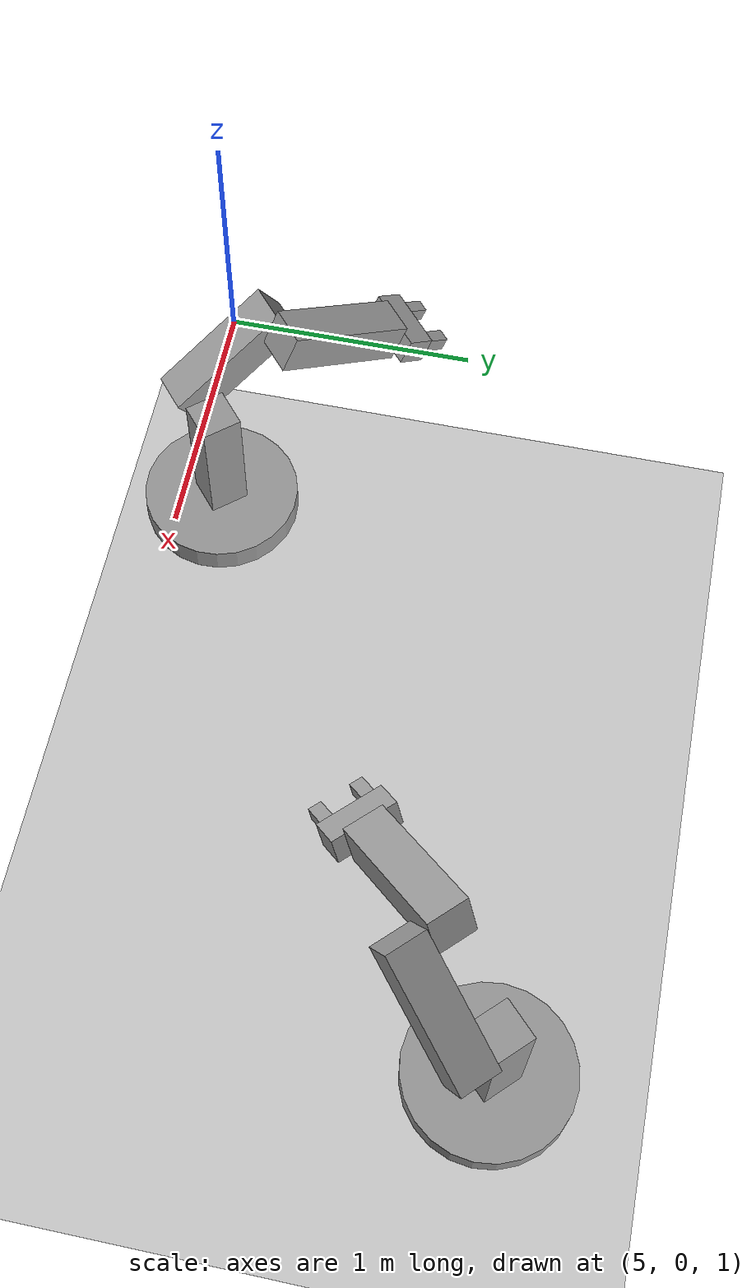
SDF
<sdf version="1.7">
 <world name="default">
  <model name="ground_plane">
   <static>1</static>
   <link name="link">
    <collision name="collision">
     <geometry><plane><normal>0 0 1</normal><size>100 100</size></plane></geometry>
     <surface>
      <contact><collide_bitmask>65535</collide_bitmask></contact>
      <friction><ode><mu>100</mu><mu2>50</mu2></ode></friction>
     </surface>
    </collision>
    <visual name="visual">
     <cast_shadows>0</cast_shadows>
     <geometry><plane><normal>0 0 1</normal><size>100 100</size></plane></geometry>
     <material>
      <script><uri>file://media/materials/scripts/gazebo.material</uri><name>Gazebo/Grey</name></script>
     </material>
    </visual>
   </link>
  </model>
  <model name="fixed_arm_robot_clone_0">
   <link name="link_0">
    <inertial>
     <mass>1</mass>
     <inertia><ixx>0.145833</ixx><ixy>0</ixy><ixz>0</ixz><iyy>0.145833</iyy><iyz>0</iyz><izz>0.125</izz></inertia>
    </inertial>
    <pose>-0.37347 -0.501985 -0.410714 0 -0 0</pose>
    <visual name="visual">
     <geometry><cylinder><radius>0.3</radius><length>0.1</length></cylinder></geometry>
     <material>
      <lighting>1</lighting>
      <script><uri>file://media/materials/scripts/gazebo.material</uri><name>Gazebo/Grey</name></script>
      <shader type="pixel"><normal_map>__default__</normal_map></shader>
      <ambient>0.3 0.3 0.3 1</ambient>
      <diffuse>0.7 0.7 0.7 1</diffuse>
      <specular>0.01 0.01 0.01 1</specular>
      <emissive>0 0 0 1</emissive>
     </material>
    </visual>
    <collision name="collision">
     <geometry><cylinder><radius>0.3</radius><length>0.1</length></cylinder></geometry>
     <surface>
      <friction>
       <ode><mu>1</mu><mu2>1</mu2><fdir1>0 0 0</fdir1><slip1>0</slip1><slip2>0</slip2></ode>
       <torsional>
        <coefficient>1</coefficient>
        <patch_radius>0</patch_radius>
        <surface_radius>0</surface_radius>
        <use_patch_radius>1</use_patch_radius>
        <ode><slip>0</slip></ode>
       </torsional>
      </friction>
      <bounce><restitution_coefficient>0</restitution_coefficient><threshold>1e+06</threshold></bounce>
      <contact>
       <collide_without_contact>0</collide_without_contact>
       <collide_without_contact_bitmask>1</collide_without_contact_bitmask>
       <collide_bitmask>1</collide_bitmask>
       <ode>
        <soft_cfm>0</soft_cfm>
        <soft_erp>0.2</soft_erp>
        <kp>1e+13</kp>
        <kd>1</kd>
        <max_vel>0.01</max_vel>
        <min_depth>0</min_depth>
       </ode>
       <bullet>
        <split_impulse>1</split_impulse>
        <split_impulse_penetration_threshold>-0.01</split_impulse_penetration_threshold>
        <soft_cfm>0</soft_cfm>
        <soft_erp>0.2</soft_erp>
        <kp>1e+13</kp>
        <kd>1</kd>
       </bullet>
      </contact>
     </surface>
    </collision>
   </link>
   <link name="link_1">
    <inertial>
     <mass>1</mass>
     <inertia>
      <ixx>0.166667</ixx>
      <ixy>0</ixy>
      <ixz>0</ixz>
      <iyy>0.166667</iyy>
      <iyz>0</iyz>
      <izz>0.166667</izz>
     </inertia>
    </inertial>
    <pose>-0.37347 -0.501985 -0.110714 0 -0 0</pose>
    <visual name="visual">
     <geometry><box><size>0.15 0.15 0.5</size></box></geometry>
     <material>
      <lighting>1</lighting>
      <script><uri>file://media/materials/scripts/gazebo.material</uri><name>Gazebo/Grey</name></script>
      <shader type="pixel"><normal_map>__default__</normal_map></shader>
      <ambient>0.3 0.3 0.3 1</ambient>
      <diffuse>0.7 0.7 0.7 1</diffuse>
      <specular>0.01 0.01 0.01 1</specular>
      <emissive>0 0 0 1</emissive>
     </material>
    </visual>
    <collision name="collision">
     <geometry><box><size>0.15 0.15 0.5</size></box></geometry>
     <surface>
      <friction>
       <ode><mu>1</mu><mu2>1</mu2><fdir1>0 0 0</fdir1><slip1>0</slip1><slip2>0</slip2></ode>
       <torsional>
        <coefficient>1</coefficient>
        <patch_radius>0</patch_radius>
        <surface_radius>0</surface_radius>
        <use_patch_radius>1</use_patch_radius>
        <ode><slip>0</slip></ode>
       </torsional>
      </friction>
      <bounce><restitution_coefficient>0</restitution_coefficient><threshold>1e+06</threshold></bounce>
      <contact>
       <collide_without_contact>0</collide_without_contact>
       <collide_without_contact_bitmask>1</collide_without_contact_bitmask>
       <collide_bitmask>1</collide_bitmask>
       <ode>
        <soft_cfm>0</soft_cfm>
        <soft_erp>0.2</soft_erp>
        <kp>1e+13</kp>
        <kd>1</kd>
        <max_vel>0.01</max_vel>
        <min_depth>0</min_depth>
       </ode>
       <bullet>
        <split_impulse>1</split_impulse>
        <split_impulse_penetration_threshold>-0.01</split_impulse_penetration_threshold>
        <soft_cfm>0</soft_cfm>
        <soft_erp>0.2</soft_erp>
        <kp>1e+13</kp>
        <kd>1</kd>
       </bullet>
      </contact>
     </surface>
    </collision>
   </link>
   <link name="link_1_clone">
    <inertial>
     <mass>1</mass>
     <inertia>
      <ixx>0.166667</ixx>
      <ixy>0</ixy>
      <ixz>0</ixz>
      <iyy>0.166667</iyy>
      <iyz>0</iyz>
      <izz>0.166667</izz>
     </inertia>
    </inertial>
    <pose>-0.37347 -0.351985 0.139286 0 1 0</pose>
    <visual name="visual">
     <pose>0 0 0.175 0 -0 0</pose>
     <geometry><box><size>0.15 0.15 0.5</size></box></geometry>
     <material>
      <lighting>1</lighting>
      <script><uri>file://media/materials/scripts/gazebo.material</uri><name>Gazebo/Grey</name></script>
      <shader type="pixel"><normal_map>__default__</normal_map></shader>
      <ambient>0.3 0.3 0.3 1</ambient>
      <diffuse>0.7 0.7 0.7 1</diffuse>
      <specular>0.01 0.01 0.01 1</specular>
      <emissive>0 0 0 1</emissive>
     </material>
    </visual>
    <collision name="collision">
     <pose>0 0 0.175 0 -0 0</pose>
     <geometry><box><size>0.15 0.15 0.5</size></box></geometry>
     <surface>
      <friction>
       <ode><mu>1</mu><mu2>1</mu2><fdir1>0 0 0</fdir1><slip1>0</slip1><slip2>0</slip2></ode>
       <torsional>
        <coefficient>1</coefficient>
        <patch_radius>0</patch_radius>
        <surface_radius>0</surface_radius>
        <use_patch_radius>1</use_patch_radius>
        <ode><slip>0</slip></ode>
       </torsional>
      </friction>
      <bounce><restitution_coefficient>0</restitution_coefficient><threshold>1e+06</threshold></bounce>
      <contact>
       <collide_without_contact>0</collide_without_contact>
       <collide_without_contact_bitmask>1</collide_without_contact_bitmask>
       <collide_bitmask>1</collide_bitmask>
       <ode>
        <soft_cfm>0</soft_cfm>
        <soft_erp>0.2</soft_erp>
        <kp>1e+13</kp>
        <kd>1</kd>
        <max_vel>0.01</max_vel>
        <min_depth>0</min_depth>
       </ode>
       <bullet>
        <split_impulse>1</split_impulse>
        <split_impulse_penetration_threshold>-0.01</split_impulse_penetration_threshold>
        <soft_cfm>0</soft_cfm>
        <soft_erp>0.2</soft_erp>
        <kp>1e+13</kp>
        <kd>1</kd>
       </bullet>
      </contact>
     </surface>
    </collision>
   </link>
   <link name="link_1_clone_clone">
    <inertial>
     <mass>1</mass>
     <inertia>
      <ixx>0.166667</ixx>
      <ixy>0</ixy>
      <ixz>0</ixz>
      <iyy>0.166667</iyy>
      <iyz>0</iyz>
      <izz>0.166667</izz>
     </inertia>
    </inertial>
    <pose>-0.015845 -0.501985 0.368914 3.14159 1.14159 3.14159</pose>
    <visual name="visual">
     <pose>0 0 0.175 0 -0 0</pose>
     <geometry><box><size>0.15 0.15 0.5</size></box></geometry>
     <material>
      <lighting>1</lighting>
      <script><uri>file://media/materials/scripts/gazebo.material</uri><name>Gazebo/Grey</name></script>
      <shader type="pixel"><normal_map>__default__</normal_map></shader>
      <ambient>0.3 0.3 0.3 1</ambient>
      <diffuse>0.7 0.7 0.7 1</diffuse>
      <specular>0.01 0.01 0.01 1</specular>
      <emissive>0 0 0 1</emissive>
     </material>
    </visual>
    <collision name="collision">
     <pose>0 0 0.175 0 -0 0</pose>
     <geometry><box><size>0.15 0.15 0.5</size></box></geometry>
     <surface>
      <friction>
       <ode><mu>1</mu><mu2>1</mu2><fdir1>0 0 0</fdir1><slip1>0</slip1><slip2>0</slip2></ode>
       <torsional>
        <coefficient>1</coefficient>
        <patch_radius>0</patch_radius>
        <surface_radius>0</surface_radius>
        <use_patch_radius>1</use_patch_radius>
        <ode><slip>0</slip></ode>
       </torsional>
      </friction>
      <bounce><restitution_coefficient>0</restitution_coefficient><threshold>1e+06</threshold></bounce>
      <contact>
       <collide_without_contact>0</collide_without_contact>
       <collide_without_contact_bitmask>1</collide_without_contact_bitmask>
       <collide_bitmask>1</collide_bitmask>
       <ode>
        <soft_cfm>0</soft_cfm>
        <soft_erp>0.2</soft_erp>
        <kp>1e+13</kp>
        <kd>1</kd>
        <max_vel>0.01</max_vel>
        <min_depth>0</min_depth>
       </ode>
       <bullet>
        <split_impulse>1</split_impulse>
        <split_impulse_penetration_threshold>-0.01</split_impulse_penetration_threshold>
        <soft_cfm>0</soft_cfm>
        <soft_erp>0.2</soft_erp>
        <kp>1e+13</kp>
        <kd>1</kd>
       </bullet>
      </contact>
     </surface>
    </collision>
   </link>
   <link name="link_2">
    <inertial>
     <mass>1</mass>
     <inertia>
      <ixx>0.166667</ixx>
      <ixy>0</ixy>
      <ixz>0</ixz>
      <iyy>0.166667</iyy>
      <iyz>0</iyz>
      <izz>0.166667</izz>
     </inertia>
    </inertial>
    <pose>0.416072 -0.501985 0.171244 -1.5708 1.14159 -3.14159</pose>
    <visual name="visual">
     <geometry><box><size>0.1 0.1 0.25</size></box></geometry>
     <material>
      <lighting>1</lighting>
      <script><uri>file://media/materials/scripts/gazebo.material</uri><name>Gazebo/Grey</name></script>
      <shader type="pixel"><normal_map>__default__</normal_map></shader>
      <ambient>0.3 0.3 0.3 1</ambient>
      <diffuse>0.7 0.7 0.7 1</diffuse>
      <specular>0.01 0.01 0.01 1</specular>
      <emissive>0 0 0 1</emissive>
     </material>
    </visual>
    <collision name="collision">
     <geometry><box><size>0.1 0.1 0.25</size></box></geometry>
     <surface>
      <friction>
       <ode><mu>1</mu><mu2>1</mu2><fdir1>0 0 0</fdir1><slip1>0</slip1><slip2>0</slip2></ode>
       <torsional>
        <coefficient>1</coefficient>
        <patch_radius>0</patch_radius>
        <surface_radius>0</surface_radius>
        <use_patch_radius>1</use_patch_radius>
        <ode><slip>0</slip></ode>
       </torsional>
      </friction>
      <bounce><restitution_coefficient>0</restitution_coefficient><threshold>1e+06</threshold></bounce>
      <contact>
       <collide_without_contact>0</collide_without_contact>
       <collide_without_contact_bitmask>1</collide_without_contact_bitmask>
       <collide_bitmask>1</collide_bitmask>
       <ode>
        <soft_cfm>0</soft_cfm>
        <soft_erp>0.2</soft_erp>
        <kp>1e+13</kp>
        <kd>1</kd>
        <max_vel>0.01</max_vel>
        <min_depth>0</min_depth>
       </ode>
       <bullet>
        <split_impulse>1</split_impulse>
        <split_impulse_penetration_threshold>-0.01</split_impulse_penetration_threshold>
        <soft_cfm>0</soft_cfm>
        <soft_erp>0.2</soft_erp>
        <kp>1e+13</kp>
        <kd>1</kd>
       </bullet>
      </contact>
     </surface>
    </collision>
   </link>
   <link name="link_3">
    <inertial>
     <mass>1</mass>
     <inertia>
      <ixx>0.166667</ixx>
      <ixy>0</ixy>
      <ixz>0</ixz>
      <iyy>0.166667</iyy>
      <iyz>0</iyz>
      <izz>0.166667</izz>
     </inertia>
    </inertial>
    <pose>0.507001 -0.421985 0.12963 -1e-06 1.14159 -3.14159</pose>
    <visual name="visual">
     <geometry><box><size>0.05 0.05 0.1</size></box></geometry>
     <material>
      <lighting>1</lighting>
      <script><uri>file://media/materials/scripts/gazebo.material</uri><name>Gazebo/Grey</name></script>
      <shader type="pixel"><normal_map>__default__</normal_map></shader>
      <ambient>0.3 0.3 0.3 1</ambient>
      <diffuse>0.7 0.7 0.7 1</diffuse>
      <specular>0.01 0.01 0.01 1</specular>
      <emissive>0 0 0 1</emissive>
     </material>
    </visual>
    <collision name="collision">
     <geometry><box><size>0.05 0.05 0.1</size></box></geometry>
     <surface>
      <friction>
       <ode><mu>1</mu><mu2>1</mu2><fdir1>0 0 0</fdir1><slip1>0</slip1><slip2>0</slip2></ode>
       <torsional>
        <coefficient>1</coefficient>
        <patch_radius>0</patch_radius>
        <surface_radius>0</surface_radius>
        <use_patch_radius>1</use_patch_radius>
        <ode><slip>0</slip></ode>
       </torsional>
      </friction>
      <bounce><restitution_coefficient>0</restitution_coefficient><threshold>1e+06</threshold></bounce>
      <contact>
       <collide_without_contact>0</collide_without_contact>
       <collide_without_contact_bitmask>1</collide_without_contact_bitmask>
       <collide_bitmask>1</collide_bitmask>
       <ode>
        <soft_cfm>0</soft_cfm>
        <soft_erp>0.2</soft_erp>
        <kp>1e+13</kp>
        <kd>1</kd>
        <max_vel>0.01</max_vel>
        <min_depth>0</min_depth>
       </ode>
       <bullet>
        <split_impulse>1</split_impulse>
        <split_impulse_penetration_threshold>-0.01</split_impulse_penetration_threshold>
        <soft_cfm>0</soft_cfm>
        <soft_erp>0.2</soft_erp>
        <kp>1e+13</kp>
        <kd>1</kd>
       </bullet>
      </contact>
     </surface>
    </collision>
   </link>
   <link name="link_3_clone">
    <inertial>
     <mass>1</mass>
     <inertia>
      <ixx>0.166667</ixx>
      <ixy>0</ixy>
      <ixz>0</ixz>
      <iyy>0.166667</iyy>
      <iyz>0</iyz>
      <izz>0.166667</izz>
     </inertia>
    </inertial>
    <pose>0.507002 -0.581985 0.12963 -1e-06 1.14159 -3.14159</pose>
    <visual name="visual">
     <geometry><box><size>0.05 0.05 0.1</size></box></geometry>
     <material>
      <lighting>1</lighting>
      <script><uri>file://media/materials/scripts/gazebo.material</uri><name>Gazebo/Grey</name></script>
      <shader type="pixel"><normal_map>__default__</normal_map></shader>
      <ambient>0.3 0.3 0.3 1</ambient>
      <diffuse>0.7 0.7 0.7 1</diffuse>
      <specular>0.01 0.01 0.01 1</specular>
      <emissive>0 0 0 1</emissive>
     </material>
    </visual>
    <collision name="collision">
     <geometry><box><size>0.05 0.05 0.1</size></box></geometry>
     <surface>
      <friction>
       <ode><mu>1</mu><mu2>1</mu2><fdir1>0 0 0</fdir1><slip1>0</slip1><slip2>0</slip2></ode>
       <torsional>
        <coefficient>1</coefficient>
        <patch_radius>0</patch_radius>
        <surface_radius>0</surface_radius>
        <use_patch_radius>1</use_patch_radius>
        <ode><slip>0</slip></ode>
       </torsional>
      </friction>
      <bounce><restitution_coefficient>0</restitution_coefficient><threshold>1e+06</threshold></bounce>
      <contact>
       <collide_without_contact>0</collide_without_contact>
       <collide_without_contact_bitmask>1</collide_without_contact_bitmask>
       <collide_bitmask>1</collide_bitmask>
       <ode>
        <soft_cfm>0</soft_cfm>
        <soft_erp>0.2</soft_erp>
        <kp>1e+13</kp>
        <kd>1</kd>
        <max_vel>0.01</max_vel>
        <min_depth>0</min_depth>
       </ode>
       <bullet>
        <split_impulse>1</split_impulse>
        <split_impulse_penetration_threshold>-0.01</split_impulse_penetration_threshold>
        <soft_cfm>0</soft_cfm>
        <soft_erp>0.2</soft_erp>
        <kp>1e+13</kp>
        <kd>1</kd>
       </bullet>
      </contact>
     </surface>
    </collision>
   </link>
   <joint name="link_0_JOINT_0" type="fixed">
    <parent>link_0</parent>
    <child>link_1</child>
    <physics>
     <ode><limit><cfm>0</cfm><erp>0.2</erp></limit><suspension><cfm>0</cfm><erp>0.2</erp></suspension></ode>
    </physics>
   </joint>
   <joint name="link_1_JOINT_5" type="fixed">
    <parent>link_1</parent>
    <child>link_1_clone</child>
    <physics>
     <ode><limit><cfm>0</cfm><erp>0.2</erp></limit><suspension><cfm>0</cfm><erp>0.2</erp></suspension></ode>
    </physics>
   </joint>
   <joint name="link_1_clone_JOINT_6" type="fixed">
    <parent>link_1_clone</parent>
    <child>link_1_clone_clone</child>
    <physics>
     <ode><limit><cfm>0</cfm><erp>0.2</erp></limit><suspension><cfm>0</cfm><erp>0.2</erp></suspension></ode>
    </physics>
   </joint>
   <joint name="link_1_clone_clone_JOINT_8" type="fixed">
    <parent>link_1_clone_clone</parent>
    <child>link_2</child>
    <physics>
     <ode><limit><cfm>0</cfm><erp>0.2</erp></limit><suspension><cfm>0</cfm><erp>0.2</erp></suspension></ode>
    </physics>
   </joint>
   <joint name="link_2_JOINT_9" type="fixed">
    <parent>link_2</parent>
    <child>link_3</child>
    <physics>
     <ode><limit><cfm>0</cfm><erp>0.2</erp></limit><suspension><cfm>0</cfm><erp>0.2</erp></suspension></ode>
    </physics>
   </joint>
   <joint name="link_3_JOINT_10" type="fixed">
    <parent>link_3</parent>
    <child>link_3_clone</child>
    <physics>
     <ode><limit><cfm>0</cfm><erp>0.2</erp></limit><suspension><cfm>0</cfm><erp>0.2</erp></suspension></ode>
    </physics>
   </joint>
   <static>1</static>
   <pose>7.99286 0.949654 1.42548 -1e-06 1e-06 -2.36039</pose>
  </model>
  <model name="fixed_arm_robot_clone_1_clone_clone_1">
   <link name="link_0">
    <inertial>
     <mass>1</mass>
     <inertia><ixx>0.145833</ixx><ixy>0</ixy><ixz>0</ixz><iyy>0.145833</iyy><iyz>0</iyz><izz>0.125</izz></inertia>
    </inertial>
    <pose>-0.37347 -0.501985 -0.410714 0 -0 0</pose>
    <visual name="visual">
     <geometry><cylinder><radius>0.3</radius><length>0.1</length></cylinder></geometry>
     <material>
      <lighting>1</lighting>
      <script><uri>file://media/materials/scripts/gazebo.material</uri><name>Gazebo/Grey</name></script>
      <shader type="pixel"><normal_map>__default__</normal_map></shader>
      <ambient>0.3 0.3 0.3 1</ambient>
      <diffuse>0.7 0.7 0.7 1</diffuse>
      <specular>0.01 0.01 0.01 1</specular>
      <emissive>0 0 0 1</emissive>
     </material>
    </visual>
    <collision name="collision">
     <geometry><cylinder><radius>0.3</radius><length>0.1</length></cylinder></geometry>
     <surface>
      <friction>
       <ode><mu>1</mu><mu2>1</mu2><fdir1>0 0 0</fdir1><slip1>0</slip1><slip2>0</slip2></ode>
       <torsional>
        <coefficient>1</coefficient>
        <patch_radius>0</patch_radius>
        <surface_radius>0</surface_radius>
        <use_patch_radius>1</use_patch_radius>
        <ode><slip>0</slip></ode>
       </torsional>
      </friction>
      <bounce><restitution_coefficient>0</restitution_coefficient><threshold>1e+06</threshold></bounce>
      <contact>
       <collide_without_contact>0</collide_without_contact>
       <collide_without_contact_bitmask>1</collide_without_contact_bitmask>
       <collide_bitmask>1</collide_bitmask>
       <ode>
        <soft_cfm>0</soft_cfm>
        <soft_erp>0.2</soft_erp>
        <kp>1e+13</kp>
        <kd>1</kd>
        <max_vel>0.01</max_vel>
        <min_depth>0</min_depth>
       </ode>
       <bullet>
        <split_impulse>1</split_impulse>
        <split_impulse_penetration_threshold>-0.01</split_impulse_penetration_threshold>
        <soft_cfm>0</soft_cfm>
        <soft_erp>0.2</soft_erp>
        <kp>1e+13</kp>
        <kd>1</kd>
       </bullet>
      </contact>
     </surface>
    </collision>
   </link>
   <link name="link_1">
    <inertial>
     <mass>1</mass>
     <inertia>
      <ixx>0.166667</ixx>
      <ixy>0</ixy>
      <ixz>0</ixz>
      <iyy>0.166667</iyy>
      <iyz>0</iyz>
      <izz>0.166667</izz>
     </inertia>
    </inertial>
    <pose>-0.37347 -0.501985 -0.110714 0 -0 0</pose>
    <visual name="visual">
     <geometry><box><size>0.15 0.15 0.5</size></box></geometry>
     <material>
      <lighting>1</lighting>
      <script><uri>file://media/materials/scripts/gazebo.material</uri><name>Gazebo/Grey</name></script>
      <shader type="pixel"><normal_map>__default__</normal_map></shader>
      <ambient>0.3 0.3 0.3 1</ambient>
      <diffuse>0.7 0.7 0.7 1</diffuse>
      <specular>0.01 0.01 0.01 1</specular>
      <emissive>0 0 0 1</emissive>
     </material>
    </visual>
    <collision name="collision">
     <geometry><box><size>0.15 0.15 0.5</size></box></geometry>
     <surface>
      <friction>
       <ode><mu>1</mu><mu2>1</mu2><fdir1>0 0 0</fdir1><slip1>0</slip1><slip2>0</slip2></ode>
       <torsional>
        <coefficient>1</coefficient>
        <patch_radius>0</patch_radius>
        <surface_radius>0</surface_radius>
        <use_patch_radius>1</use_patch_radius>
        <ode><slip>0</slip></ode>
       </torsional>
      </friction>
      <bounce><restitution_coefficient>0</restitution_coefficient><threshold>1e+06</threshold></bounce>
      <contact>
       <collide_without_contact>0</collide_without_contact>
       <collide_without_contact_bitmask>1</collide_without_contact_bitmask>
       <collide_bitmask>1</collide_bitmask>
       <ode>
        <soft_cfm>0</soft_cfm>
        <soft_erp>0.2</soft_erp>
        <kp>1e+13</kp>
        <kd>1</kd>
        <max_vel>0.01</max_vel>
        <min_depth>0</min_depth>
       </ode>
       <bullet>
        <split_impulse>1</split_impulse>
        <split_impulse_penetration_threshold>-0.01</split_impulse_penetration_threshold>
        <soft_cfm>0</soft_cfm>
        <soft_erp>0.2</soft_erp>
        <kp>1e+13</kp>
        <kd>1</kd>
       </bullet>
      </contact>
     </surface>
    </collision>
   </link>
   <link name="link_1_clone">
    <inertial>
     <mass>1</mass>
     <inertia>
      <ixx>0.166667</ixx>
      <ixy>0</ixy>
      <ixz>0</ixz>
      <iyy>0.166667</iyy>
      <iyz>0</iyz>
      <izz>0.166667</izz>
     </inertia>
    </inertial>
    <pose>-0.37347 -0.351985 0.139286 0 1 0</pose>
    <visual name="visual">
     <pose>0 0 0.175 0 -0 0</pose>
     <geometry><box><size>0.15 0.15 0.5</size></box></geometry>
     <material>
      <lighting>1</lighting>
      <script><uri>file://media/materials/scripts/gazebo.material</uri><name>Gazebo/Grey</name></script>
      <shader type="pixel"><normal_map>__default__</normal_map></shader>
      <ambient>0.3 0.3 0.3 1</ambient>
      <diffuse>0.7 0.7 0.7 1</diffuse>
      <specular>0.01 0.01 0.01 1</specular>
      <emissive>0 0 0 1</emissive>
     </material>
    </visual>
    <collision name="collision">
     <pose>0 0 0.175 0 -0 0</pose>
     <geometry><box><size>0.15 0.15 0.5</size></box></geometry>
     <surface>
      <friction>
       <ode><mu>1</mu><mu2>1</mu2><fdir1>0 0 0</fdir1><slip1>0</slip1><slip2>0</slip2></ode>
       <torsional>
        <coefficient>1</coefficient>
        <patch_radius>0</patch_radius>
        <surface_radius>0</surface_radius>
        <use_patch_radius>1</use_patch_radius>
        <ode><slip>0</slip></ode>
       </torsional>
      </friction>
      <bounce><restitution_coefficient>0</restitution_coefficient><threshold>1e+06</threshold></bounce>
      <contact>
       <collide_without_contact>0</collide_without_contact>
       <collide_without_contact_bitmask>1</collide_without_contact_bitmask>
       <collide_bitmask>1</collide_bitmask>
       <ode>
        <soft_cfm>0</soft_cfm>
        <soft_erp>0.2</soft_erp>
        <kp>1e+13</kp>
        <kd>1</kd>
        <max_vel>0.01</max_vel>
        <min_depth>0</min_depth>
       </ode>
       <bullet>
        <split_impulse>1</split_impulse>
        <split_impulse_penetration_threshold>-0.01</split_impulse_penetration_threshold>
        <soft_cfm>0</soft_cfm>
        <soft_erp>0.2</soft_erp>
        <kp>1e+13</kp>
        <kd>1</kd>
       </bullet>
      </contact>
     </surface>
    </collision>
   </link>
   <link name="link_1_clone_clone">
    <inertial>
     <mass>1</mass>
     <inertia>
      <ixx>0.166667</ixx>
      <ixy>0</ixy>
      <ixz>0</ixz>
      <iyy>0.166667</iyy>
      <iyz>0</iyz>
      <izz>0.166667</izz>
     </inertia>
    </inertial>
    <pose>-0.015845 -0.501985 0.368914 3.14159 1.14159 3.14159</pose>
    <visual name="visual">
     <pose>0 0 0.175 0 -0 0</pose>
     <geometry><box><size>0.15 0.15 0.5</size></box></geometry>
     <material>
      <lighting>1</lighting>
      <script><uri>file://media/materials/scripts/gazebo.material</uri><name>Gazebo/Grey</name></script>
      <shader type="pixel"><normal_map>__default__</normal_map></shader>
      <ambient>0.3 0.3 0.3 1</ambient>
      <diffuse>0.7 0.7 0.7 1</diffuse>
      <specular>0.01 0.01 0.01 1</specular>
      <emissive>0 0 0 1</emissive>
     </material>
    </visual>
    <collision name="collision">
     <pose>0 0 0.175 0 -0 0</pose>
     <geometry><box><size>0.15 0.15 0.5</size></box></geometry>
     <surface>
      <friction>
       <ode><mu>1</mu><mu2>1</mu2><fdir1>0 0 0</fdir1><slip1>0</slip1><slip2>0</slip2></ode>
       <torsional>
        <coefficient>1</coefficient>
        <patch_radius>0</patch_radius>
        <surface_radius>0</surface_radius>
        <use_patch_radius>1</use_patch_radius>
        <ode><slip>0</slip></ode>
       </torsional>
      </friction>
      <bounce><restitution_coefficient>0</restitution_coefficient><threshold>1e+06</threshold></bounce>
      <contact>
       <collide_without_contact>0</collide_without_contact>
       <collide_without_contact_bitmask>1</collide_without_contact_bitmask>
       <collide_bitmask>1</collide_bitmask>
       <ode>
        <soft_cfm>0</soft_cfm>
        <soft_erp>0.2</soft_erp>
        <kp>1e+13</kp>
        <kd>1</kd>
        <max_vel>0.01</max_vel>
        <min_depth>0</min_depth>
       </ode>
       <bullet>
        <split_impulse>1</split_impulse>
        <split_impulse_penetration_threshold>-0.01</split_impulse_penetration_threshold>
        <soft_cfm>0</soft_cfm>
        <soft_erp>0.2</soft_erp>
        <kp>1e+13</kp>
        <kd>1</kd>
       </bullet>
      </contact>
     </surface>
    </collision>
   </link>
   <link name="link_2">
    <inertial>
     <mass>1</mass>
     <inertia>
      <ixx>0.166667</ixx>
      <ixy>0</ixy>
      <ixz>0</ixz>
      <iyy>0.166667</iyy>
      <iyz>0</iyz>
      <izz>0.166667</izz>
     </inertia>
    </inertial>
    <pose>0.416072 -0.501985 0.171244 -1.5708 1.14159 -3.14159</pose>
    <visual name="visual">
     <geometry><box><size>0.1 0.1 0.25</size></box></geometry>
     <material>
      <lighting>1</lighting>
      <script><uri>file://media/materials/scripts/gazebo.material</uri><name>Gazebo/Grey</name></script>
      <shader type="pixel"><normal_map>__default__</normal_map></shader>
      <ambient>0.3 0.3 0.3 1</ambient>
      <diffuse>0.7 0.7 0.7 1</diffuse>
      <specular>0.01 0.01 0.01 1</specular>
      <emissive>0 0 0 1</emissive>
     </material>
    </visual>
    <collision name="collision">
     <geometry><box><size>0.1 0.1 0.25</size></box></geometry>
     <surface>
      <friction>
       <ode><mu>1</mu><mu2>1</mu2><fdir1>0 0 0</fdir1><slip1>0</slip1><slip2>0</slip2></ode>
       <torsional>
        <coefficient>1</coefficient>
        <patch_radius>0</patch_radius>
        <surface_radius>0</surface_radius>
        <use_patch_radius>1</use_patch_radius>
        <ode><slip>0</slip></ode>
       </torsional>
      </friction>
      <bounce><restitution_coefficient>0</restitution_coefficient><threshold>1e+06</threshold></bounce>
      <contact>
       <collide_without_contact>0</collide_without_contact>
       <collide_without_contact_bitmask>1</collide_without_contact_bitmask>
       <collide_bitmask>1</collide_bitmask>
       <ode>
        <soft_cfm>0</soft_cfm>
        <soft_erp>0.2</soft_erp>
        <kp>1e+13</kp>
        <kd>1</kd>
        <max_vel>0.01</max_vel>
        <min_depth>0</min_depth>
       </ode>
       <bullet>
        <split_impulse>1</split_impulse>
        <split_impulse_penetration_threshold>-0.01</split_impulse_penetration_threshold>
        <soft_cfm>0</soft_cfm>
        <soft_erp>0.2</soft_erp>
        <kp>1e+13</kp>
        <kd>1</kd>
       </bullet>
      </contact>
     </surface>
    </collision>
   </link>
   <link name="link_3">
    <inertial>
     <mass>1</mass>
     <inertia>
      <ixx>0.166667</ixx>
      <ixy>0</ixy>
      <ixz>0</ixz>
      <iyy>0.166667</iyy>
      <iyz>0</iyz>
      <izz>0.166667</izz>
     </inertia>
    </inertial>
    <pose>0.507001 -0.421985 0.12963 -1e-06 1.14159 -3.14159</pose>
    <visual name="visual">
     <geometry><box><size>0.05 0.05 0.1</size></box></geometry>
     <material>
      <lighting>1</lighting>
      <script><uri>file://media/materials/scripts/gazebo.material</uri><name>Gazebo/Grey</name></script>
      <shader type="pixel"><normal_map>__default__</normal_map></shader>
      <ambient>0.3 0.3 0.3 1</ambient>
      <diffuse>0.7 0.7 0.7 1</diffuse>
      <specular>0.01 0.01 0.01 1</specular>
      <emissive>0 0 0 1</emissive>
     </material>
    </visual>
    <collision name="collision">
     <geometry><box><size>0.05 0.05 0.1</size></box></geometry>
     <surface>
      <friction>
       <ode><mu>1</mu><mu2>1</mu2><fdir1>0 0 0</fdir1><slip1>0</slip1><slip2>0</slip2></ode>
       <torsional>
        <coefficient>1</coefficient>
        <patch_radius>0</patch_radius>
        <surface_radius>0</surface_radius>
        <use_patch_radius>1</use_patch_radius>
        <ode><slip>0</slip></ode>
       </torsional>
      </friction>
      <bounce><restitution_coefficient>0</restitution_coefficient><threshold>1e+06</threshold></bounce>
      <contact>
       <collide_without_contact>0</collide_without_contact>
       <collide_without_contact_bitmask>1</collide_without_contact_bitmask>
       <collide_bitmask>1</collide_bitmask>
       <ode>
        <soft_cfm>0</soft_cfm>
        <soft_erp>0.2</soft_erp>
        <kp>1e+13</kp>
        <kd>1</kd>
        <max_vel>0.01</max_vel>
        <min_depth>0</min_depth>
       </ode>
       <bullet>
        <split_impulse>1</split_impulse>
        <split_impulse_penetration_threshold>-0.01</split_impulse_penetration_threshold>
        <soft_cfm>0</soft_cfm>
        <soft_erp>0.2</soft_erp>
        <kp>1e+13</kp>
        <kd>1</kd>
       </bullet>
      </contact>
     </surface>
    </collision>
   </link>
   <link name="link_3_clone">
    <inertial>
     <mass>1</mass>
     <inertia>
      <ixx>0.166667</ixx>
      <ixy>0</ixy>
      <ixz>0</ixz>
      <iyy>0.166667</iyy>
      <iyz>0</iyz>
      <izz>0.166667</izz>
     </inertia>
    </inertial>
    <pose>0.507002 -0.581985 0.12963 -1e-06 1.14159 -3.14159</pose>
    <visual name="visual">
     <geometry><box><size>0.05 0.05 0.1</size></box></geometry>
     <material>
      <lighting>1</lighting>
      <script><uri>file://media/materials/scripts/gazebo.material</uri><name>Gazebo/Grey</name></script>
      <shader type="pixel"><normal_map>__default__</normal_map></shader>
      <ambient>0.3 0.3 0.3 1</ambient>
      <diffuse>0.7 0.7 0.7 1</diffuse>
      <specular>0.01 0.01 0.01 1</specular>
      <emissive>0 0 0 1</emissive>
     </material>
    </visual>
    <collision name="collision">
     <geometry><box><size>0.05 0.05 0.1</size></box></geometry>
     <surface>
      <friction>
       <ode><mu>1</mu><mu2>1</mu2><fdir1>0 0 0</fdir1><slip1>0</slip1><slip2>0</slip2></ode>
       <torsional>
        <coefficient>1</coefficient>
        <patch_radius>0</patch_radius>
        <surface_radius>0</surface_radius>
        <use_patch_radius>1</use_patch_radius>
        <ode><slip>0</slip></ode>
       </torsional>
      </friction>
      <bounce><restitution_coefficient>0</restitution_coefficient><threshold>1e+06</threshold></bounce>
      <contact>
       <collide_without_contact>0</collide_without_contact>
       <collide_without_contact_bitmask>1</collide_without_contact_bitmask>
       <collide_bitmask>1</collide_bitmask>
       <ode>
        <soft_cfm>0</soft_cfm>
        <soft_erp>0.2</soft_erp>
        <kp>1e+13</kp>
        <kd>1</kd>
        <max_vel>0.01</max_vel>
        <min_depth>0</min_depth>
       </ode>
       <bullet>
        <split_impulse>1</split_impulse>
        <split_impulse_penetration_threshold>-0.01</split_impulse_penetration_threshold>
        <soft_cfm>0</soft_cfm>
        <soft_erp>0.2</soft_erp>
        <kp>1e+13</kp>
        <kd>1</kd>
       </bullet>
      </contact>
     </surface>
    </collision>
   </link>
   <joint name="link_0_JOINT_0" type="fixed">
    <parent>link_0</parent>
    <child>link_1</child>
    <physics>
     <ode><limit><cfm>0</cfm><erp>0.2</erp></limit><suspension><cfm>0</cfm><erp>0.2</erp></suspension></ode>
    </physics>
   </joint>
   <joint name="link_1_JOINT_5" type="fixed">
    <parent>link_1</parent>
    <child>link_1_clone</child>
    <physics>
     <ode><limit><cfm>0</cfm><erp>0.2</erp></limit><suspension><cfm>0</cfm><erp>0.2</erp></suspension></ode>
    </physics>
   </joint>
   <joint name="link_1_clone_JOINT_6" type="fixed">
    <parent>link_1_clone</parent>
    <child>link_1_clone_clone</child>
    <physics>
     <ode><limit><cfm>0</cfm><erp>0.2</erp></limit><suspension><cfm>0</cfm><erp>0.2</erp></suspension></ode>
    </physics>
   </joint>
   <joint name="link_1_clone_clone_JOINT_8" type="fixed">
    <parent>link_1_clone_clone</parent>
    <child>link_2</child>
    <physics>
     <ode><limit><cfm>0</cfm><erp>0.2</erp></limit><suspension><cfm>0</cfm><erp>0.2</erp></suspension></ode>
    </physics>
   </joint>
   <joint name="link_2_JOINT_9" type="fixed">
    <parent>link_2</parent>
    <child>link_3</child>
    <physics>
     <ode><limit><cfm>0</cfm><erp>0.2</erp></limit><suspension><cfm>0</cfm><erp>0.2</erp></suspension></ode>
    </physics>
   </joint>
   <joint name="link_3_JOINT_10" type="fixed">
    <parent>link_3</parent>
    <child>link_3_clone</child>
    <physics>
     <ode><limit><cfm>0</cfm><erp>0.2</erp></limit><suspension><cfm>0</cfm><erp>0.2</erp></suspension></ode>
    </physics>
   </joint>
   <static>1</static>
   <pose>5.24248 0.121506 1.42548 -1e-06 -1e-06 2.27272</pose>
  </model>
 </world>
</sdf>
